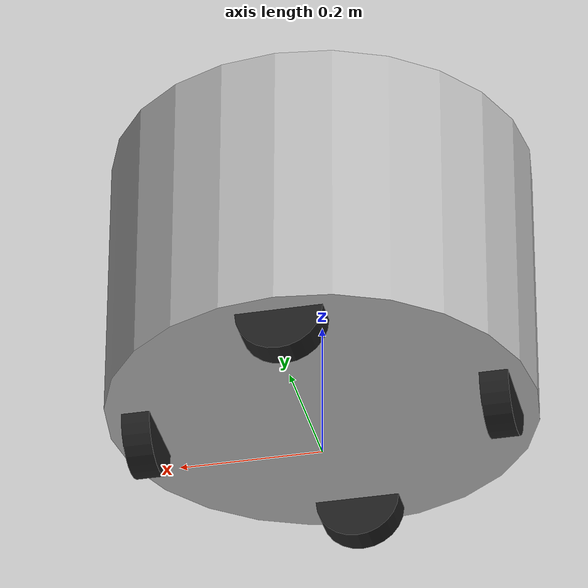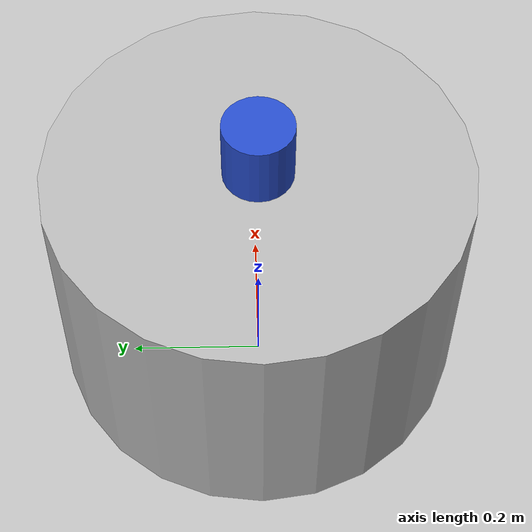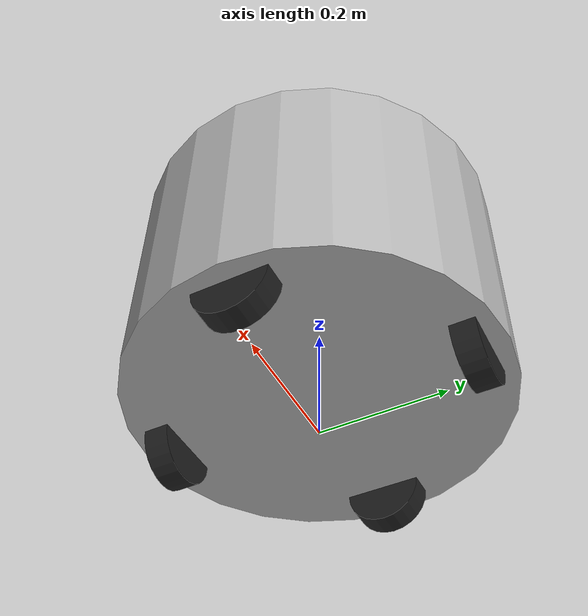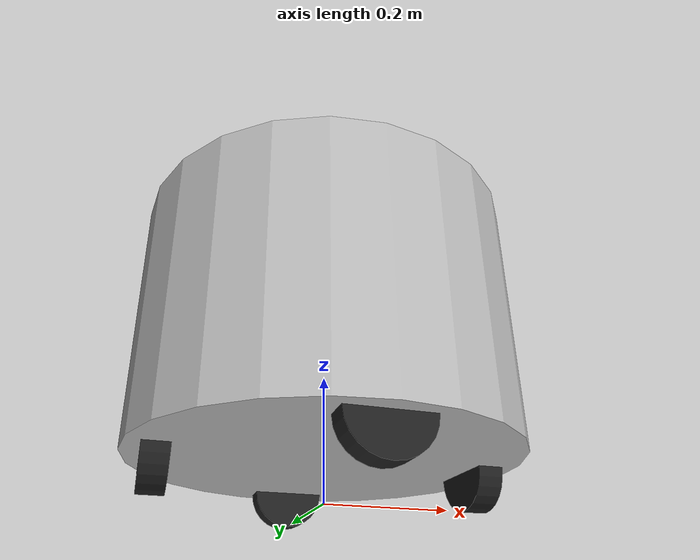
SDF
<?xml version="1.0" ?>
<sdf version="1.7">
  <model name="sentry_robot">
    <static>false</static>

    <link name="base_footprint">
      <pose>0 0 0 0 0 0</pose>
    </link>

    <joint name="base_joint" type="fixed">
      <parent>base_footprint</parent>
      <child>base_link</child>
    </joint>

    <link name="base_link">
      <pose>0 0 0.06 0 0 0</pose>
      <inertial>
        <pose>0 0 0.20 0 0 0</pose>
        <mass>15.0</mass>
        <inertia>
          <ixx>0.5375</ixx> <ixy>0.0</ixy> <ixz>0.0</ixz>
          <iyy>0.5375</iyy> <iyz>0.0</iyz> <izz>0.675</izz>
        </inertia>
      </inertial>
      <collision name="base_collision">
        <pose>0 0 0.20 0 0 0</pose>
        <geometry>
          <cylinder>
            <radius>0.30</radius>
            <length>0.40</length>
          </cylinder>
        </geometry>
      </collision>
      <visual name="base_visual">
        <pose>0 0 0.20 0 0 0</pose>
        <geometry>
          <cylinder>
            <radius>0.30</radius>
            <length>0.40</length>
          </cylinder>
        </geometry>
      </visual>
    </link>

    <link name="wheel_front_link">
      <pose relative_to="base_link">0.25 0 0.0 0 1.570796 0</pose>
      <inertial>
        <mass>0.5</mass>
        <inertia>
          <ixx>0.000516</ixx> <ixy>0.0</ixy> <ixz>0.0</ixz>
          <iyy>0.000516</iyy> <iyz>0.0</iyz> <izz>0.0009</izz>
        </inertia>
      </inertial>
      <collision name="wheel_front_collision">
        <geometry>
          <cylinder>
            <radius>0.06</radius>
            <length>0.04</length>
          </cylinder>
        </geometry>
        <surface>
          <friction>
            <ode>
              <mu>0.0</mu>
              <mu2>0.0</mu2>
            </ode>
          </friction>
        </surface>
      </collision>
      <visual name="wheel_front_visual">
        <geometry>
          <cylinder>
            <radius>0.06</radius>
            <length>0.04</length>
          </cylinder>
        </geometry>
        <material>
          <script>
            <name>Gazebo/Black</name>
          </script>
        </material>
      </visual>
    </link>
    <joint name="wheel_front_joint" type="revolute">
      <parent>base_link</parent>
      <child>wheel_front_link</child>
      <axis>
        <xyz>0 0 1</xyz>
      </axis>
    </joint>

    <link name="wheel_back_link">
      <pose relative_to="base_link">-0.25 0 0.0 0 1.570796 0</pose>
      <inertial>
        <mass>0.5</mass>
        <inertia>
          <ixx>0.000516</ixx> <ixy>0.0</ixy> <ixz>0.0</ixz>
          <iyy>0.000516</iyy> <iyz>0.0</iyz> <izz>0.0009</izz>
        </inertia>
      </inertial>
      <collision name="wheel_back_collision">
        <geometry>
          <cylinder>
            <radius>0.06</radius>
            <length>0.04</length>
          </cylinder>
        </geometry>
        <surface>
          <friction>
            <ode>
              <mu>0.0</mu>
              <mu2>0.0</mu2>
            </ode>
          </friction>
        </surface>
      </collision>
      <visual name="wheel_back_visual">
        <geometry>
          <cylinder>
            <radius>0.06</radius>
            <length>0.04</length>
          </cylinder>
        </geometry>
        <material>
          <script>
            <name>Gazebo/Black</name>
          </script>
        </material>
      </visual>
    </link>
    <joint name="wheel_back_joint" type="revolute">
      <parent>base_link</parent>
      <child>wheel_back_link</child>
      <axis>
        <xyz>0 0 1</xyz>
      </axis>
    </joint>

    <link name="wheel_left_link">
      <pose relative_to="base_link">0 0.25 0.0 -1.570796 0 0</pose>
      <inertial>
        <mass>0.5</mass>
        <inertia>
          <ixx>0.000516</ixx> <ixy>0.0</ixy> <ixz>0.0</ixz>
          <iyy>0.000516</iyy> <iyz>0.0</iyz> <izz>0.0009</izz>
        </inertia>
      </inertial>
      <collision name="wheel_left_collision">
        <geometry>
          <cylinder>
            <radius>0.06</radius>
            <length>0.04</length>
          </cylinder>
        </geometry>
        <surface>
          <friction>
            <ode>
              <mu>0.0</mu>
              <mu2>0.0</mu2>
            </ode>
          </friction>
        </surface>
      </collision>
      <visual name="wheel_left_visual">
        <geometry>
          <cylinder>
            <radius>0.06</radius>
            <length>0.04</length>
          </cylinder>
        </geometry>
        <material>
          <script>
            <name>Gazebo/Black</name>
          </script>
        </material>
      </visual>
    </link>
    <joint name="wheel_left_joint" type="revolute">
      <parent>base_link</parent>
      <child>wheel_left_link</child>
      <axis>
        <xyz>0 0 1</xyz>
      </axis>
    </joint>

    <link name="wheel_right_link">
      <pose relative_to="base_link">0 -0.25 0.0 -1.570796 0 0</pose>
      <inertial>
        <mass>0.5</mass>
        <inertia>
          <ixx>0.000516</ixx> <ixy>0.0</ixy> <ixz>0.0</ixz>
          <iyy>0.000516</iyy> <iyz>0.0</iyz> <izz>0.0009</izz>
        </inertia>
      </inertial>
      <collision name="wheel_right_collision">
        <geometry>
          <cylinder>
            <radius>0.06</radius>
            <length>0.04</length>
          </cylinder>
        </geometry>
        <surface>
          <friction>
            <ode>
              <mu>0.0</mu>
              <mu2>0.0</mu2>
            </ode>
          </friction>
        </surface>
      </collision>
      <visual name="wheel_right_visual">
        <geometry>
          <cylinder>
            <radius>0.06</radius>
            <length>0.04</length>
          </cylinder>
        </geometry>
        <material>
          <script>
            <name>Gazebo/Black</name>
          </script>
        </material>
      </visual>
    </link>
    <joint name="wheel_right_joint" type="revolute">
      <parent>base_link</parent>
      <child>wheel_right_link</child>
      <axis>
        <xyz>0 0 1</xyz>
      </axis>
    </joint>

    <link name="lidar_link">
      <pose relative_to="base_link">0 0 0.45 3.14159 0 0</pose>
      <inertial>
        <mass>0.5</mass>
        <inertia>
          <ixx>0.000729</ixx> <ixy>0.0</ixy> <ixz>0.0</ixz>
          <iyy>0.000729</iyy> <iyz>0.0</iyz> <izz>0.000625</izz>
        </inertia>
      </inertial>
      <collision name="lidar_collision">
        <geometry>
          <cylinder>
            <radius>0.05</radius>
            <length>0.1</length>
          </cylinder>
        </geometry>
      </collision>
      <visual name="lidar_visual">
        <geometry>
          <cylinder>
            <radius>0.05</radius>
            <length>0.1</length>
          </cylinder>
        </geometry>
        <material>
          <script>
            <name>Gazebo/Blue</name>
          </script>
        </material>
      </visual>

      <sensor name="lidar_sensor" type="ray">
        <pose>0 0 0 0 0 0</pose>
        <always_on>true</always_on>
        <visualize>true</visualize>
        <update_rate>10</update_rate>
        <ray>
          <scan>
            <horizontal>
              <samples>360</samples>
              <resolution>1.0</resolution>
              <min_angle>-3.14159</min_angle>
              <max_angle>3.14159</max_angle>
            </horizontal>
          </scan>
          <range>
            <min>0.15</min>
            <max>12.0</max>
            <resolution>0.015</resolution>
          </range>
        </ray>
        <plugin name="sentry_laserscan" filename="libgazebo_ros_ray_sensor.so">
          <ros>
            <remapping>~/out:=scan</remapping>
          </ros>
          <output_type>sensor_msgs/LaserScan</output_type>
          <frame_name>lidar_link</frame_name>
        </plugin>
      </sensor>
    </link>
    <joint name="lidar_joint" type="fixed">
      <parent>base_link</parent>
      <child>lidar_link</child>
    </joint>

    <plugin name="omni_steering" filename="libgazebo_ros_planar_move.so">
      <ros>
        <remapping>cmd_vel:=cmd_vel</remapping>
        <remapping>odom:=odom</remapping>
      </ros>
      <update_rate>50.0</update_rate>
      <publish_rate>50.0</publish_rate>
      <publish_odom>true</publish_odom>
      <publish_odom_tf>true</publish_odom_tf>
      <odometry_frame>odom</odometry_frame>
      <robot_base_frame>base_footprint</robot_base_frame>
      <covariance_x>0.0001</covariance_x>
      <covariance_y>0.0001</covariance_y>
      <covariance_yaw>0.01</covariance_yaw>
    </plugin>

  </model>
</sdf>
